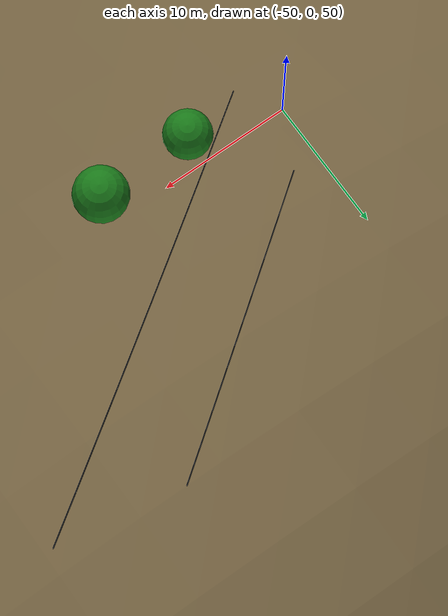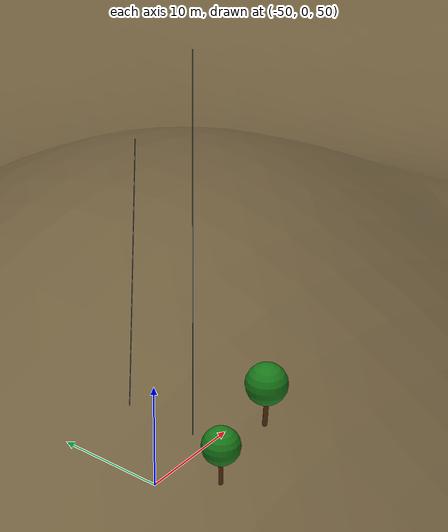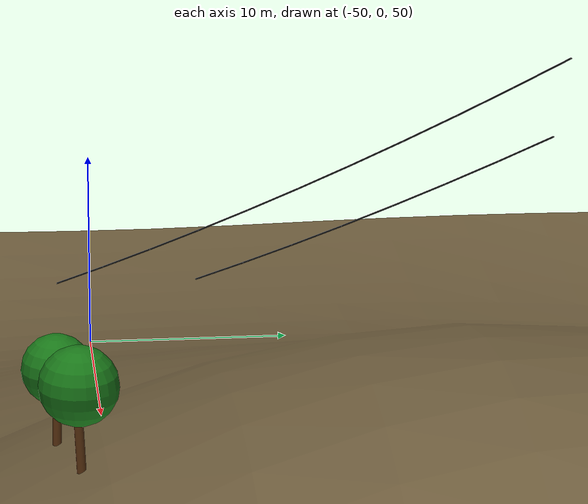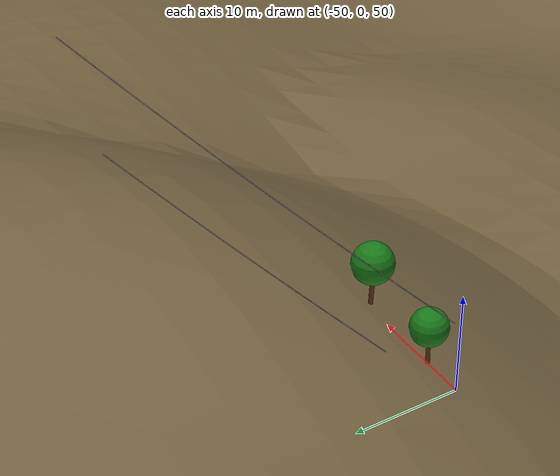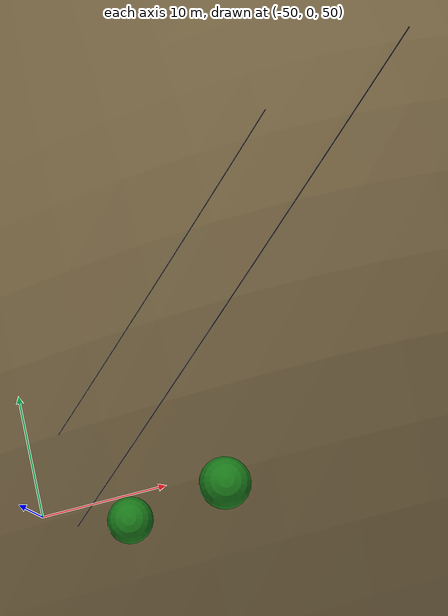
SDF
<sdf version="1.9">
 <world name="power_line_inspection">
  <model name="ground_plane">
   <static>true</static>
   <pose>0 0 -0.01 0 0 0</pose>
   <link name="link">
    <collision name="collision">
     <geometry><plane><normal>0 0 1</normal><size>600 600</size></plane></geometry>
     <surface><friction><ode><mu>1.0</mu><mu2>1.0</mu2></ode></friction></surface>
    </collision>
    <visual name="visual">
     <cast_shadows>false</cast_shadows>
     <geometry><plane><normal>0 0 1</normal><size>600 600</size></plane></geometry>
     <material>
      <ambient>0.28 0.35 0.18 1</ambient>
      <diffuse>0.32 0.40 0.22 1</diffuse>
      <specular>0.02 0.02 0.02 1</specular>
     </material>
    </visual>
   </link>
  </model>
  <model name="mountain_terrain">
   <static>true</static>
   <link name="link">
    <collision name="terrain_collision">
     <geometry>
      <mesh>
       <uri>file:///home/tjc/ros2_ws/src/uav_inspection/worlds/mountain_mesh.obj</uri>
       <scale>1 1 1</scale>
      </mesh>
     </geometry>
     <surface><friction><ode><mu>0.8</mu><mu2>0.8</mu2></ode></friction></surface>
    </collision>
    <visual name="terrain_visual">
     <geometry>
      <mesh>
       <uri>file:///home/tjc/ros2_ws/src/uav_inspection/worlds/mountain_mesh.obj</uri>
       <scale>1 1 1</scale>
      </mesh>
     </geometry>
     <material>
      <ambient>0.35 0.28 0.18 1</ambient>
      <diffuse>0.45 0.38 0.25 1</diffuse>
      <specular>0.05 0.05 0.05 1</specular>
     </material>
    </visual>
   </link>
  </model>
  <model name="wire_L_s25">
   <static>true</static>
   <pose>-45.622 -0.684 55.319 -0.86720 0.76892 -0.37035</pose>
   <link name="link">
    <visual name="v">
     <geometry><cylinder><radius>0.04</radius><length>3.9868</length></cylinder></geometry>
     <material><ambient>0.08 0.08 0.08 1</ambient><diffuse>0.08 0.08 0.08 1</diffuse></material>
    </visual>
    <collision name="c">
     <geometry><cylinder><radius>0.04</radius><length>3.9868</length></cylinder></geometry>
    </collision>
   </link>
  </model>
  <model name="wire_L_s26">
   <static>true</static>
   <pose>-42.850 1.501 57.195 -0.85564 0.76397 -0.36234</pose>
   <link name="link">
    <visual name="v">
     <geometry><cylinder><radius>0.04</radius><length>4.0074</length></cylinder></geometry>
     <material><ambient>0.08 0.08 0.08 1</ambient><diffuse>0.08 0.08 0.08 1</diffuse></material>
    </visual>
    <collision name="c">
     <geometry><cylinder><radius>0.04</radius><length>4.0074</length></cylinder></geometry>
    </collision>
   </link>
  </model>
  <model name="wire_L_s27">
   <static>true</static>
   <pose>-40.078 3.686 59.114 -0.84432 0.75900 -0.35452</pose>
   <link name="link">
    <visual name="v">
     <geometry><cylinder><radius>0.04</radius><length>4.0283</length></cylinder></geometry>
     <material><ambient>0.08 0.08 0.08 1</ambient><diffuse>0.08 0.08 0.08 1</diffuse></material>
    </visual>
    <collision name="c">
     <geometry><cylinder><radius>0.04</radius><length>4.0283</length></cylinder></geometry>
    </collision>
   </link>
  </model>
  <model name="wire_L_s28">
   <static>true</static>
   <pose>-37.306 5.871 61.077 -0.83321 0.75402 -0.34690</pose>
   <link name="link">
    <visual name="v">
     <geometry><cylinder><radius>0.04</radius><length>4.0497</length></cylinder></geometry>
     <material><ambient>0.08 0.08 0.08 1</ambient><diffuse>0.08 0.08 0.08 1</diffuse></material>
    </visual>
    <collision name="c">
     <geometry><cylinder><radius>0.04</radius><length>4.0497</length></cylinder></geometry>
    </collision>
   </link>
  </model>
  <model name="wire_L_s29">
   <static>true</static>
   <pose>-34.533 8.055 63.084 -0.82233 0.74903 -0.33947</pose>
   <link name="link">
    <visual name="v">
     <geometry><cylinder><radius>0.04</radius><length>4.0713</length></cylinder></geometry>
     <material><ambient>0.08 0.08 0.08 1</ambient><diffuse>0.08 0.08 0.08 1</diffuse></material>
    </visual>
    <collision name="c">
     <geometry><cylinder><radius>0.04</radius><length>4.0713</length></cylinder></geometry>
    </collision>
   </link>
  </model>
  <model name="wire_L_s30">
   <static>true</static>
   <pose>-31.761 10.240 65.135 -0.81166 0.74404 -0.33223</pose>
   <link name="link">
    <visual name="v">
     <geometry><cylinder><radius>0.04</radius><length>4.0934</length></cylinder></geometry>
     <material><ambient>0.08 0.08 0.08 1</ambient><diffuse>0.08 0.08 0.08 1</diffuse></material>
    </visual>
    <collision name="c">
     <geometry><cylinder><radius>0.04</radius><length>4.0934</length></cylinder></geometry>
    </collision>
   </link>
  </model>
  <model name="wire_L_s31">
   <static>true</static>
   <pose>-28.989 12.425 67.230 -0.80121 0.73905 -0.32516</pose>
   <link name="link">
    <visual name="v">
     <geometry><cylinder><radius>0.04</radius><length>4.1157</length></cylinder></geometry>
     <material><ambient>0.08 0.08 0.08 1</ambient><diffuse>0.08 0.08 0.08 1</diffuse></material>
    </visual>
    <collision name="c">
     <geometry><cylinder><radius>0.04</radius><length>4.1157</length></cylinder></geometry>
    </collision>
   </link>
  </model>
  <model name="wire_L_s32">
   <static>true</static>
   <pose>-26.216 14.610 69.369 -0.79096 0.73405 -0.31828</pose>
   <link name="link">
    <visual name="v">
     <geometry><cylinder><radius>0.04</radius><length>4.1385</length></cylinder></geometry>
     <material><ambient>0.08 0.08 0.08 1</ambient><diffuse>0.08 0.08 0.08 1</diffuse></material>
    </visual>
    <collision name="c">
     <geometry><cylinder><radius>0.04</radius><length>4.1385</length></cylinder></geometry>
    </collision>
   </link>
  </model>
  <model name="wire_L_s33">
   <static>true</static>
   <pose>-23.444 16.794 71.551 -0.78091 0.72907 -0.31157</pose>
   <link name="link">
    <visual name="v">
     <geometry><cylinder><radius>0.04</radius><length>4.1615</length></cylinder></geometry>
     <material><ambient>0.08 0.08 0.08 1</ambient><diffuse>0.08 0.08 0.08 1</diffuse></material>
    </visual>
    <collision name="c">
     <geometry><cylinder><radius>0.04</radius><length>4.1615</length></cylinder></geometry>
    </collision>
   </link>
  </model>
  <model name="wire_L_s34">
   <static>true</static>
   <pose>-20.672 18.979 73.778 -0.77107 0.72408 -0.30503</pose>
   <link name="link">
    <visual name="v">
     <geometry><cylinder><radius>0.04</radius><length>4.1849</length></cylinder></geometry>
     <material><ambient>0.08 0.08 0.08 1</ambient><diffuse>0.08 0.08 0.08 1</diffuse></material>
    </visual>
    <collision name="c">
     <geometry><cylinder><radius>0.04</radius><length>4.1849</length></cylinder></geometry>
    </collision>
   </link>
  </model>
  <model name="wire_R_s25">
   <static>true</static>
   <pose>-45.622 6.316 55.319 -0.86720 0.76892 -0.37035</pose>
   <link name="link">
    <visual name="v">
     <geometry><cylinder><radius>0.04</radius><length>3.9868</length></cylinder></geometry>
     <material><ambient>0.08 0.08 0.08 1</ambient><diffuse>0.08 0.08 0.08 1</diffuse></material>
    </visual>
    <collision name="c">
     <geometry><cylinder><radius>0.04</radius><length>3.9868</length></cylinder></geometry>
    </collision>
   </link>
  </model>
  <model name="wire_R_s26">
   <static>true</static>
   <pose>-42.850 8.501 57.195 -0.85564 0.76397 -0.36234</pose>
   <link name="link">
    <visual name="v">
     <geometry><cylinder><radius>0.04</radius><length>4.0074</length></cylinder></geometry>
     <material><ambient>0.08 0.08 0.08 1</ambient><diffuse>0.08 0.08 0.08 1</diffuse></material>
    </visual>
    <collision name="c">
     <geometry><cylinder><radius>0.04</radius><length>4.0074</length></cylinder></geometry>
    </collision>
   </link>
  </model>
  <model name="wire_R_s27">
   <static>true</static>
   <pose>-40.078 10.686 59.114 -0.84432 0.75900 -0.35452</pose>
   <link name="link">
    <visual name="v">
     <geometry><cylinder><radius>0.04</radius><length>4.0283</length></cylinder></geometry>
     <material><ambient>0.08 0.08 0.08 1</ambient><diffuse>0.08 0.08 0.08 1</diffuse></material>
    </visual>
    <collision name="c">
     <geometry><cylinder><radius>0.04</radius><length>4.0283</length></cylinder></geometry>
    </collision>
   </link>
  </model>
  <model name="wire_R_s28">
   <static>true</static>
   <pose>-37.306 12.871 61.077 -0.83321 0.75402 -0.34690</pose>
   <link name="link">
    <visual name="v">
     <geometry><cylinder><radius>0.04</radius><length>4.0497</length></cylinder></geometry>
     <material><ambient>0.08 0.08 0.08 1</ambient><diffuse>0.08 0.08 0.08 1</diffuse></material>
    </visual>
    <collision name="c">
     <geometry><cylinder><radius>0.04</radius><length>4.0497</length></cylinder></geometry>
    </collision>
   </link>
  </model>
  <model name="wire_R_s29">
   <static>true</static>
   <pose>-34.533 15.055 63.084 -0.82233 0.74903 -0.33947</pose>
   <link name="link">
    <visual name="v">
     <geometry><cylinder><radius>0.04</radius><length>4.0713</length></cylinder></geometry>
     <material><ambient>0.08 0.08 0.08 1</ambient><diffuse>0.08 0.08 0.08 1</diffuse></material>
    </visual>
    <collision name="c">
     <geometry><cylinder><radius>0.04</radius><length>4.0713</length></cylinder></geometry>
    </collision>
   </link>
  </model>
  <model name="wire_R_s30">
   <static>true</static>
   <pose>-31.761 17.240 65.135 -0.81166 0.74404 -0.33223</pose>
   <link name="link">
    <visual name="v">
     <geometry><cylinder><radius>0.04</radius><length>4.0934</length></cylinder></geometry>
     <material><ambient>0.08 0.08 0.08 1</ambient><diffuse>0.08 0.08 0.08 1</diffuse></material>
    </visual>
    <collision name="c">
     <geometry><cylinder><radius>0.04</radius><length>4.0934</length></cylinder></geometry>
    </collision>
   </link>
  </model>
  <model name="wire_R_s31">
   <static>true</static>
   <pose>-28.989 19.425 67.230 -0.80121 0.73905 -0.32516</pose>
   <link name="link">
    <visual name="v">
     <geometry><cylinder><radius>0.04</radius><length>4.1157</length></cylinder></geometry>
     <material><ambient>0.08 0.08 0.08 1</ambient><diffuse>0.08 0.08 0.08 1</diffuse></material>
    </visual>
    <collision name="c">
     <geometry><cylinder><radius>0.04</radius><length>4.1157</length></cylinder></geometry>
    </collision>
   </link>
  </model>
  <model name="tree_06">
   <static>true</static>
   <pose>-35.60 -1.29 48.84 0 0 4.22</pose>
   <link name="link">
    <visual name="trunk">
     <pose>0 0 1.723 -0.023 0.039 0</pose>
     <geometry><cylinder><radius>0.235</radius><length>3.446</length></cylinder></geometry>
     <material><ambient>0.32 0.18 0.05 1</ambient><diffuse>0.38 0.21 0.07 1</diffuse></material>
    </visual>
    <collision name="trunk_c">
     <pose>0 0 1.723 0 0 0</pose>
     <geometry><cylinder><radius>0.235</radius><length>3.446</length></cylinder></geometry>
    </collision>
    <visual name="canopy">
     <pose>0 0 4.549 0 0 0</pose>
     <geometry><sphere><radius>2.005</radius></sphere></geometry>
     <material><ambient>0.07 0.38 0.07 1</ambient><diffuse>0.10 0.48 0.10 1</diffuse></material>
    </visual>
    <collision name="canopy_c">
     <pose>0 0 4.549 0 0 0</pose>
     <geometry><sphere><radius>2.005</radius></sphere></geometry>
    </collision>
   </link>
  </model>
  <model name="tree_09">
   <static>true</static>
   <pose>-43.29 -2.02 47.16 0 0 3.49</pose>
   <link name="link">
    <visual name="trunk">
     <pose>0 0 1.544 0.023 -0.007 0</pose>
     <geometry><cylinder><radius>0.227</radius><length>3.088</length></cylinder></geometry>
     <material><ambient>0.32 0.18 0.05 1</ambient><diffuse>0.38 0.21 0.07 1</diffuse></material>
    </visual>
    <collision name="trunk_c">
     <pose>0 0 1.544 0 0 0</pose>
     <geometry><cylinder><radius>0.227</radius><length>3.088</length></cylinder></geometry>
    </collision>
    <visual name="canopy">
     <pose>0 0 4.076 0 0 0</pose>
     <geometry><sphere><radius>1.797</radius></sphere></geometry>
     <material><ambient>0.07 0.38 0.07 1</ambient><diffuse>0.10 0.48 0.10 1</diffuse></material>
    </visual>
    <collision name="canopy_c">
     <pose>0 0 4.076 0 0 0</pose>
     <geometry><sphere><radius>1.797</radius></sphere></geometry>
    </collision>
   </link>
  </model>
 </world>
</sdf>
